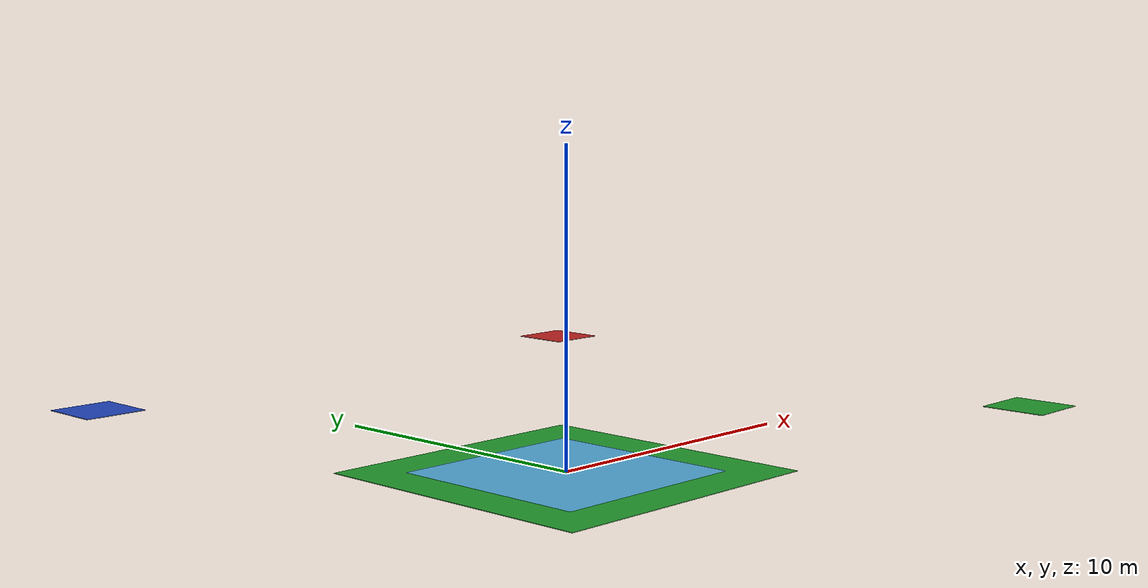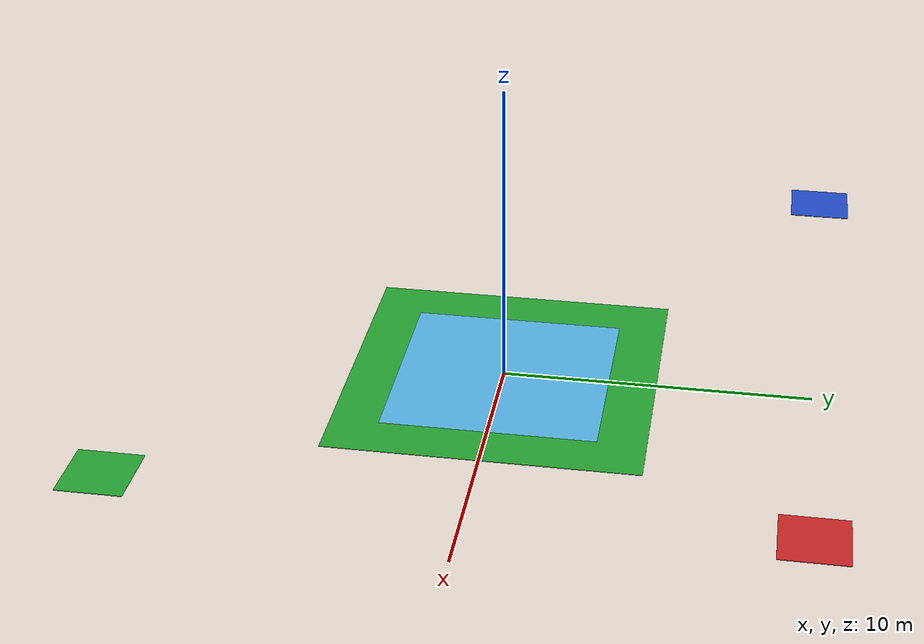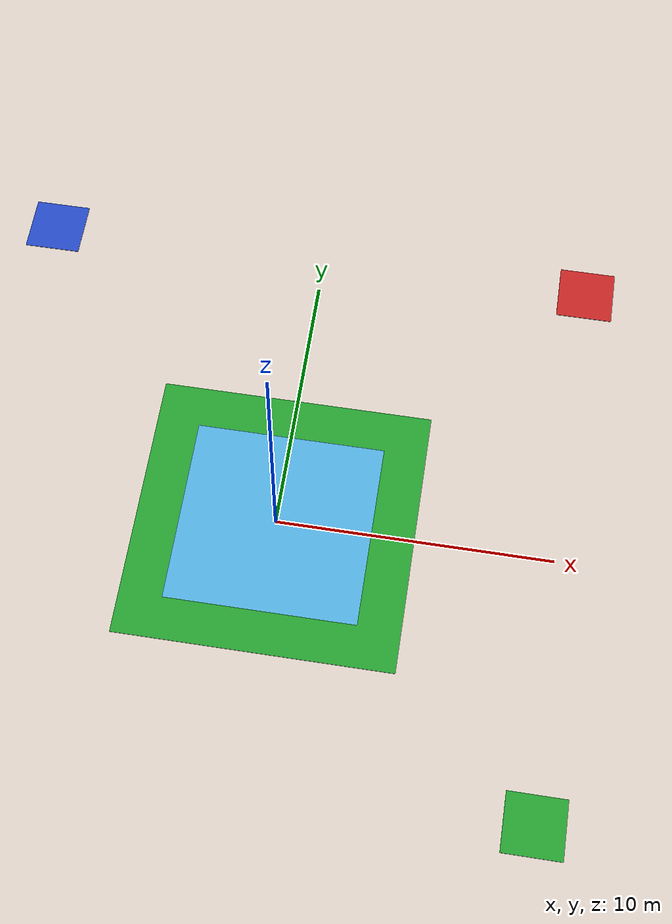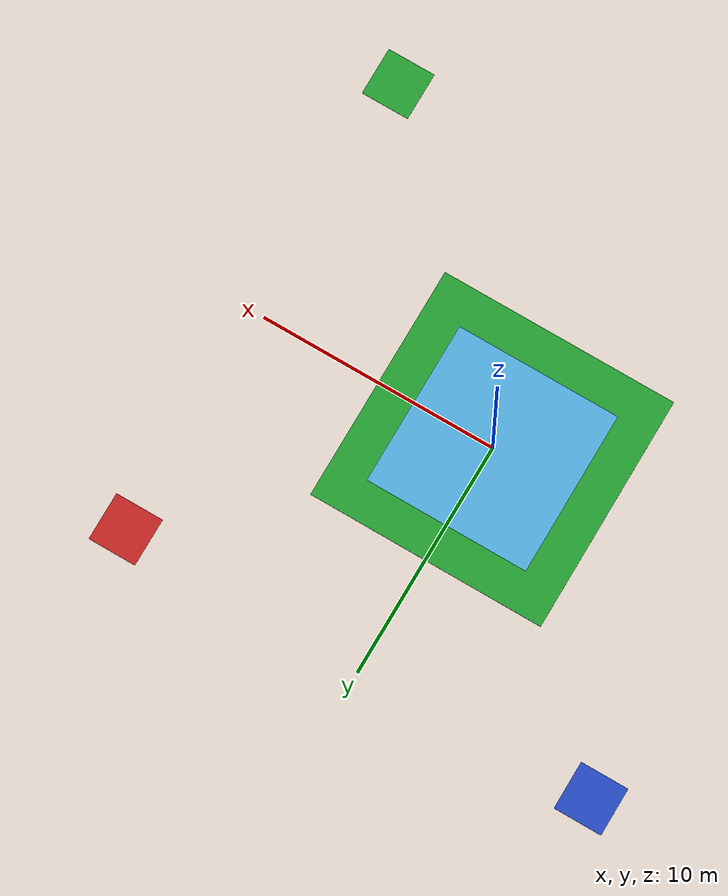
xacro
<robot name="road" xmlns:xacro="http://www.ros.org/wiki/xacro">

  <xacro:include filename="$(find seat_car_description)/urdf/include/road/road.xacro" />
  <xacro:include filename="$(find seat_car_description)/urdf/include/road/road.gazebo" />

  <xacro:road name="road" size="5.0">
    <origin xyz="0.0 0.0 0.0" rpy="0 0 0"/>
  </xacro:road>
</robot>

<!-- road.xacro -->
<root xmlns:xacro="http://ros.org/wiki/xacro">

  <xacro:macro name="road" params="name size *origin">
    <!-- obstacle -->
    <link name="road_link">
      <inertial>
        <mass value="100"/>
        <origin xyz="0 0 0.01" rpy="0 0 0"/>
        <inertia ixx="21.33933333" ixy="0.0" ixz="0.0" iyy="13.73933333" iyz="0.0" izz="35.07266667" />
      </inertial>
      <visual>
        <origin xyz="0 0 0" rpy="0 0 0"/>
        <geometry>
          <box size="10 10 0.02"/>
        </geometry>
        <material name="green"/>
      </visual>
      <collision>
        <origin xyz="0 0 0" rpy="0 0 0"/>
        <geometry>
          <box size="10 10 0.02"/>
        </geometry>
      </collision>
    </link>

    <joint name="road_link_road_image" type="fixed">
      <origin xyz="0 0 0.011" rpy="1.5707 0 0" />
      <parent link="road_link"/>
      <child link="road_image" />
    </joint>

    <link name="road_image">
      <inertial>
        <mass value="0.001"/>
        <origin xyz="0.0 0.0 0.0" rpy="0 0 0"/>
        <inertia ixx="0.00001" ixy="0.0" ixz="0.0" iyy="0.00001" iyz="0.0" izz="0.00001" />
      </inertial>
      <visual>
        <origin xyz="0 0 0" rpy="0 0 0"/>
        <geometry>
          <mesh filename="package://seat_car_description/urdf/include/road/road.dae" scale="${size*8.63} ${size*8.63} ${size*8.63}"/>
        </geometry>
      </visual>
      <collision>
        <origin xyz="0 0 0" rpy="0 0 0"/>
        <geometry>
          <mesh filename="package://seat_car_description/urdf/include/road/road.dae" scale="${size*8.63} ${size*8.63} ${size*8.63}"/>
        </geometry>
      </collision>
    </link>

    <joint name="road_link_ceiling" type="fixed">
      <origin xyz="0 0 2.0" rpy="0 0 0" />
      <parent link="road_link"/>
      <child link="ceiling" />
    </joint>

    <link name="ceiling">
    </link>

    <joint name="ceiling_lamp1" type="fixed">
      <origin xyz="10 10 -0.02" rpy="0 0 0" />
      <parent link="ceiling"/>
      <child link="lamp1" />
    </joint>

    <link name="lamp1">
      <inertial>
        <mass value="0.001"/>
        <origin xyz="0.0 0.0 0.0" rpy="0 0 0"/>
        <inertia ixx="0.00001" ixy="0.0" ixz="0.0" iyy="0.00001" iyz="0.0" izz="0.00001" />
      </inertial>
      <visual>
        <origin xyz="0 0 0" rpy="0 0 0"/>
        <geometry>
          <box size="2 2 0.02"/>
        </geometry>
      </visual>
      <collision>
        <origin xyz="0 0 0" rpy="0 0 0"/>
        <geometry>
          <box size="2 2 0.02"/>
        </geometry>
      </collision>
    </link>

    <joint name="ceiling_lamp2" type="fixed">
      <origin xyz="10 -10 -0.02" rpy="0 0 0" />
      <parent link="ceiling"/>
      <child link="lamp2" />
    </joint>

    <link name="lamp2">
      <inertial>
        <mass value="0.001"/>
        <origin xyz="0.0 0.0 0.0" rpy="0 0 0"/>
        <inertia ixx="0.00001" ixy="0.0" ixz="0.0" iyy="0.00001" iyz="0.0" izz="0.00001" />
      </inertial>
      <visual>
        <origin xyz="0 0 0" rpy="0 0 0"/>
        <geometry>
          <box size="2 2 0.02"/>
        </geometry>
      </visual>
      <collision>
        <origin xyz="0 0 0" rpy="0 0 0"/>
        <geometry>
          <box size="2 2 0.02"/>
        </geometry>
      </collision>
    </link>

    <joint name="ceiling_lamp3" type="fixed">
      <origin xyz="-10 10 -0.02" rpy="0 0 0" />
      <parent link="ceiling"/>
      <child link="lamp3" />
    </joint>

    <link name="lamp3">
      <inertial>
        <mass value="0.001"/>
        <origin xyz="0.0 0.0 0.0" rpy="0 0 0"/>
        <inertia ixx="0.00001" ixy="0.0" ixz="0.0" iyy="0.00001" iyz="0.0" izz="0.00001" />
      </inertial>
      <visual>
        <origin xyz="0 0 0" rpy="0 0 0"/>
        <geometry>
          <box size="2 2 0.02"/>
        </geometry>
      </visual>
      <collision>
        <origin xyz="0 0 0" rpy="0 0 0"/>
        <geometry>
          <box size="2 2 0.02"/>
        </geometry>
      </collision>
    </link>
  </xacro:macro>

</root>
